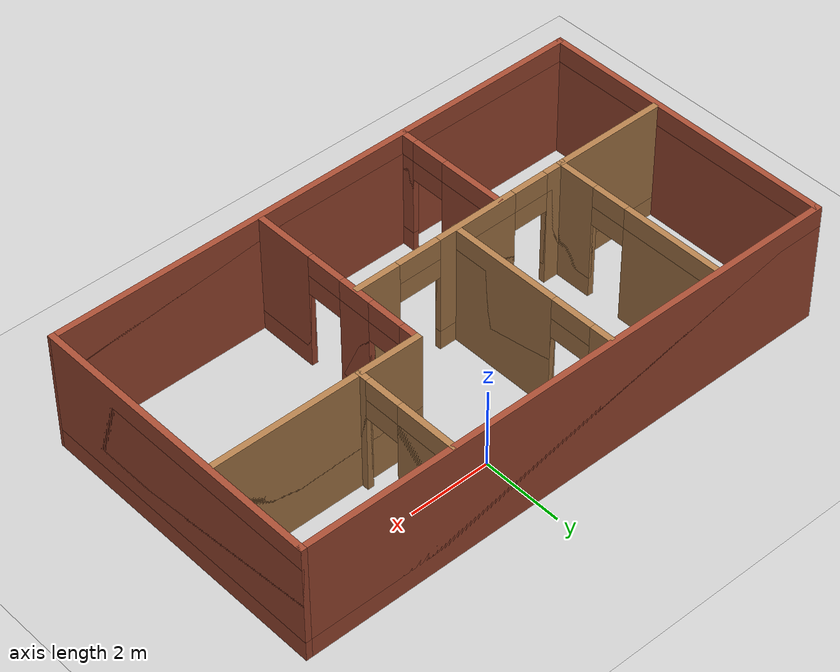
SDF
<sdf version="1.7">
 <world name="default">
  <model name="ground_plane">
   <static>1</static>
   <link name="link">
    <collision name="collision">
     <geometry><plane><normal>0 0 1</normal><size>100 100</size></plane></geometry>
     <surface><friction><ode><mu>100</mu><mu2>50</mu2></ode></friction></surface>
    </collision>
    <visual name="visual">
     <cast_shadows>0</cast_shadows>
     <geometry><plane><normal>0 0 1</normal><size>100 100</size></plane></geometry>
     <material>
      <script><uri>file://media/materials/scripts/gazebo.material</uri><name>Gazebo/Grey</name></script>
     </material>
    </visual>
   </link>
  </model>
  <model name="Home">
   <pose>-1 -2.37 0 0 -0 0</pose>
   <link name="Wall_12">
    <pose>1.66056 -1.22804 0 0 -0 1.5708</pose>
    <visual name="Wall_12_Visual_0">
     <pose>-1.61056 0 1.25 0 -0 0</pose>
     <geometry><box><size>1.52888 0.15 2.5</size></box></geometry>
     <material>
      <script><uri>file://media/materials/scripts/gazebo.material</uri><name>Gazebo/Bricks</name></script>
      <ambient>1 1 1 1</ambient>
     </material>
     <meta><layer>0</layer></meta>
    </visual>
    <collision name="Wall_12_Collision_0">
     <geometry><box><size>1.52888 0.15 2.5</size></box></geometry>
     <pose>-1.61056 0 1.25 0 -0 0</pose>
    </collision>
    <visual name="Wall_12_Visual_1">
     <pose>0.530674 0 1.25 0 -0 0</pose>
     <geometry><box><size>0.861072 0.15 2.5</size></box></geometry>
     <material>
      <script><uri>file://media/materials/scripts/gazebo.material</uri><name>Gazebo/Bricks</name></script>
      <ambient>1 1 1 1</ambient>
     </material>
     <meta><layer>0</layer></meta>
    </visual>
    <collision name="Wall_12_Collision_1">
     <geometry><box><size>0.861072 0.15 2.5</size></box></geometry>
     <pose>0.530674 0 1.25 0 -0 0</pose>
    </collision>
    <visual name="Wall_12_Visual_2">
     <pose>2.1181 0 1.25 0 -0 0</pose>
     <geometry><box><size>0.51379 0.15 2.5</size></box></geometry>
     <material>
      <script><uri>file://media/materials/scripts/gazebo.material</uri><name>Gazebo/Bricks</name></script>
      <ambient>1 1 1 1</ambient>
     </material>
     <meta><layer>0</layer></meta>
    </visual>
    <collision name="Wall_12_Collision_2">
     <geometry><box><size>0.51379 0.15 2.5</size></box></geometry>
     <pose>2.1181 0 1.25 0 -0 0</pose>
    </collision>
    <visual name="Wall_12_Visual_3">
     <pose>-0.372993 0 2.25 0 -0 0</pose>
     <geometry><box><size>0.946261 0.15 0.5</size></box></geometry>
     <material>
      <script><uri>file://media/materials/scripts/gazebo.material</uri><name>Gazebo/Bricks</name></script>
      <ambient>1 1 1 1</ambient>
     </material>
     <meta><layer>0</layer></meta>
    </visual>
    <collision name="Wall_12_Collision_3">
     <geometry><box><size>0.946261 0.15 0.5</size></box></geometry>
     <pose>-0.372993 0 2.25 0 -0 0</pose>
    </collision>
    <visual name="Wall_12_Visual_4">
     <pose>1.41121 0 2.25 0 -0 0</pose>
     <geometry><box><size>0.9 0.15 0.5</size></box></geometry>
     <material>
      <script><uri>file://media/materials/scripts/gazebo.material</uri><name>Gazebo/Bricks</name></script>
      <ambient>1 1 1 1</ambient>
     </material>
     <meta><layer>0</layer></meta>
    </visual>
    <collision name="Wall_12_Collision_4">
     <geometry><box><size>0.9 0.15 0.5</size></box></geometry>
     <pose>1.41121 0 2.25 0 -0 0</pose>
    </collision>
   </link>
   <link name="Wall_13">
    <collision name="Wall_13_Collision">
     <geometry><box><size>5.25 0.15 2.5</size></box></geometry>
     <pose>0 0 1.25 0 -0 0</pose>
    </collision>
    <visual name="Wall_13_Visual">
     <pose>0 0 1.25 0 -0 0</pose>
     <geometry><box><size>5.25 0.15 2.5</size></box></geometry>
     <material>
      <script><uri>file://media/materials/scripts/gazebo.material</uri><name>Gazebo/Wood</name></script>
      <ambient>1 1 1 1</ambient>
     </material>
     <meta><layer>0</layer></meta>
    </visual>
    <pose>4.21056 1.07196 0 0 -0 0</pose>
   </link>
   <link name="Wall_15">
    <pose>3.11696 2.38389 0 0 -0 1.5708</pose>
    <visual name="Wall_15_Visual_0">
     <pose>-1.22409 0 1.25 0 -0 0</pose>
     <geometry><box><size>0.301812 0.15 2.5</size></box></geometry>
     <material>
      <script><uri>file://media/materials/scripts/gazebo.material</uri><name>Gazebo/Wood</name></script>
      <ambient>1 1 1 1</ambient>
     </material>
     <meta><layer>0</layer></meta>
    </visual>
    <collision name="Wall_15_Collision_0">
     <geometry><box><size>0.301812 0.15 2.5</size></box></geometry>
     <pose>-1.22409 0 1.25 0 -0 0</pose>
    </collision>
    <visual name="Wall_15_Visual_1">
     <pose>0.600906 0 1.25 0 -0 0</pose>
     <geometry><box><size>1.54819 0.15 2.5</size></box></geometry>
     <material>
      <script><uri>file://media/materials/scripts/gazebo.material</uri><name>Gazebo/Wood</name></script>
      <ambient>1 1 1 1</ambient>
     </material>
     <meta><layer>0</layer></meta>
    </visual>
    <collision name="Wall_15_Collision_1">
     <geometry><box><size>1.54819 0.15 2.5</size></box></geometry>
     <pose>0.600906 0 1.25 0 -0 0</pose>
    </collision>
    <visual name="Wall_15_Visual_2">
     <pose>-0.623188 0 2.25 0 -0 0</pose>
     <geometry><box><size>0.9 0.15 0.5</size></box></geometry>
     <material>
      <script><uri>file://media/materials/scripts/gazebo.material</uri><name>Gazebo/Wood</name></script>
      <ambient>1 1 1 1</ambient>
     </material>
     <meta><layer>0</layer></meta>
    </visual>
    <collision name="Wall_15_Collision_2">
     <geometry><box><size>0.9 0.15 0.5</size></box></geometry>
     <pose>-0.623188 0 2.25 0 -0 0</pose>
    </collision>
   </link>
   <link name="Wall_18">
    <pose>-3.96332 1.41133 0 0 -0 -1.5708</pose>
    <visual name="Wall_18_Visual_0">
     <pose>-0.988781 0 1.25 0 -0 0</pose>
     <geometry><box><size>2.52244 0.15 2.5</size></box></geometry>
     <material>
      <script><uri>file://media/materials/scripts/gazebo.material</uri><name>Gazebo/Wood</name></script>
      <ambient>1 1 1 1</ambient>
     </material>
     <meta><layer>0</layer></meta>
    </visual>
    <collision name="Wall_18_Collision_0">
     <geometry><box><size>2.52244 0.15 2.5</size></box></geometry>
     <pose>-0.988781 0 1.25 0 -0 0</pose>
    </collision>
    <visual name="Wall_18_Visual_1">
     <pose>1.71122 0 1.25 0 -0 0</pose>
     <geometry><box><size>1.07756 0.15 2.5</size></box></geometry>
     <material>
      <script><uri>file://media/materials/scripts/gazebo.material</uri><name>Gazebo/Wood</name></script>
      <ambient>1 1 1 1</ambient>
     </material>
     <meta><layer>0</layer></meta>
    </visual>
    <collision name="Wall_18_Collision_1">
     <geometry><box><size>1.07756 0.15 2.5</size></box></geometry>
     <pose>1.71122 0 1.25 0 -0 0</pose>
    </collision>
    <visual name="Wall_18_Visual_2">
     <pose>0.722438 0 2.25 0 -0 0</pose>
     <geometry><box><size>0.9 0.15 0.5</size></box></geometry>
     <material>
      <script><uri>file://media/materials/scripts/gazebo.material</uri><name>Gazebo/Wood</name></script>
      <ambient>1 1 1 1</ambient>
     </material>
     <meta><layer>0</layer></meta>
    </visual>
    <collision name="Wall_18_Collision_2">
     <geometry><box><size>0.9 0.15 0.5</size></box></geometry>
     <pose>0.722438 0 2.25 0 -0 0</pose>
    </collision>
   </link>
   <link name="Wall_19">
    <pose>-1.18914 -0.740536 0 0 -0 0.008269</pose>
    <visual name="Wall_19_Visual_0">
     <pose>-2.59209 0 1.25 0 -0 0</pose>
     <geometry><box><size>0.560625 0.15 2.5</size></box></geometry>
     <material>
      <script><uri>file://media/materials/scripts/gazebo.material</uri><name>Gazebo/Wood</name></script>
      <ambient>1 1 1 1</ambient>
     </material>
     <meta><layer>0</layer></meta>
    </visual>
    <collision name="Wall_19_Collision_0">
     <geometry><box><size>0.560625 0.15 2.5</size></box></geometry>
     <pose>-2.59209 0 1.25 0 -0 0</pose>
    </collision>
    <visual name="Wall_19_Visual_1">
     <pose>-0.371666 0 1.25 0 -0 0</pose>
     <geometry><box><size>2.08022 0.15 2.5</size></box></geometry>
     <material>
      <script><uri>file://media/materials/scripts/gazebo.material</uri><name>Gazebo/Wood</name></script>
      <ambient>1 1 1 1</ambient>
     </material>
     <meta><layer>0</layer></meta>
    </visual>
    <collision name="Wall_19_Collision_1">
     <geometry><box><size>2.08022 0.15 2.5</size></box></geometry>
     <pose>-0.371666 0 1.25 0 -0 0</pose>
    </collision>
    <visual name="Wall_19_Visual_2">
     <pose>2.31313 0 1.25 0 -0 0</pose>
     <geometry><box><size>1.11854 0.15 2.5</size></box></geometry>
     <material>
      <script><uri>file://media/materials/scripts/gazebo.material</uri><name>Gazebo/Wood</name></script>
      <ambient>1 1 1 1</ambient>
     </material>
     <meta><layer>0</layer></meta>
    </visual>
    <collision name="Wall_19_Collision_2">
     <geometry><box><size>1.11854 0.15 2.5</size></box></geometry>
     <pose>2.31313 0 1.25 0 -0 0</pose>
    </collision>
    <visual name="Wall_19_Visual_3">
     <pose>-1.86178 0 2.25 0 -0 0</pose>
     <geometry><box><size>0.9 0.15 0.5</size></box></geometry>
     <material>
      <script><uri>file://media/materials/scripts/gazebo.material</uri><name>Gazebo/Wood</name></script>
      <ambient>1 1 1 1</ambient>
     </material>
     <meta><layer>0</layer></meta>
    </visual>
    <collision name="Wall_19_Collision_3">
     <geometry><box><size>0.9 0.15 0.5</size></box></geometry>
     <pose>-1.86178 0 2.25 0 -0 0</pose>
    </collision>
    <visual name="Wall_19_Visual_4">
     <pose>1.21116 0 2.25 0 -0 0</pose>
     <geometry><box><size>1.08542 0.15 0.5</size></box></geometry>
     <material>
      <script><uri>file://media/materials/scripts/gazebo.material</uri><name>Gazebo/Wood</name></script>
      <ambient>1 1 1 1</ambient>
     </material>
     <meta><layer>0</layer></meta>
    </visual>
    <collision name="Wall_19_Collision_4">
     <geometry><box><size>1.08542 0.15 0.5</size></box></geometry>
     <pose>1.21116 0 2.25 0 -0 0</pose>
    </collision>
   </link>
   <link name="Wall_30">
    <collision name="Wall_30_Collision">
     <geometry><box><size>2.84783 0.15 2.5</size></box></geometry>
     <pose>0 0 1.25 0 -0 0</pose>
    </collision>
    <visual name="Wall_30_Visual">
     <pose>0 0 1.25 0 -0 0</pose>
     <geometry><box><size>2.84783 0.15 2.5</size></box></geometry>
     <material>
      <script><uri>file://media/materials/scripts/gazebo.material</uri><name>Gazebo/Wood</name></script>
      <ambient>1 1 1 1</ambient>
     </material>
     <meta><layer>0</layer></meta>
    </visual>
    <pose>-5.33536 -0.766722 0 0 -0 0.002265</pose>
   </link>
   <link name="Wall_35">
    <pose>-2.22395 -2.216 0 0 -0 -1.5708</pose>
    <visual name="Wall_35_Visual_0">
     <pose>-0.661897 0 1.25 0 -0 0</pose>
     <geometry><box><size>1.67621 0.15 2.5</size></box></geometry>
     <material>
      <script><uri>file://media/materials/scripts/gazebo.material</uri><name>Gazebo/Bricks</name></script>
      <ambient>1 1 1 1</ambient>
     </material>
     <meta><layer>0</layer></meta>
    </visual>
    <collision name="Wall_35_Collision_0">
     <geometry><box><size>1.67621 0.15 2.5</size></box></geometry>
     <pose>-0.661897 0 1.25 0 -0 0</pose>
    </collision>
    <visual name="Wall_35_Visual_1">
     <pose>1.2881 0 1.25 0 -0 0</pose>
     <geometry><box><size>0.423793 0.15 2.5</size></box></geometry>
     <material>
      <script><uri>file://media/materials/scripts/gazebo.material</uri><name>Gazebo/Bricks</name></script>
      <ambient>1 1 1 1</ambient>
     </material>
     <meta><layer>0</layer></meta>
    </visual>
    <collision name="Wall_35_Collision_1">
     <geometry><box><size>0.423793 0.15 2.5</size></box></geometry>
     <pose>1.2881 0 1.25 0 -0 0</pose>
    </collision>
    <visual name="Wall_35_Visual_2">
     <pose>0.626207 0 2.25 0 -0 0</pose>
     <geometry><box><size>0.9 0.15 0.5</size></box></geometry>
     <material>
      <script><uri>file://media/materials/scripts/gazebo.material</uri><name>Gazebo/Bricks</name></script>
      <ambient>1 1 1 1</ambient>
     </material>
     <meta><layer>0</layer></meta>
    </visual>
    <collision name="Wall_35_Collision_2">
     <geometry><box><size>0.9 0.15 0.5</size></box></geometry>
     <pose>0.626207 0 2.25 0 -0 0</pose>
    </collision>
   </link>
   <link name="Wall_37">
    <pose>-1.02777 1.42469 0 0 -0 1.5708</pose>
    <visual name="Wall_37_Visual_0">
     <pose>-0.80612 0 1.25 0 -0 0</pose>
     <geometry><box><size>2.88776 0.15 2.5</size></box></geometry>
     <material>
      <script><uri>file://media/materials/scripts/gazebo.material</uri><name>Gazebo/Wood</name></script>
      <ambient>1 1 1 1</ambient>
     </material>
     <meta><layer>0</layer></meta>
    </visual>
    <collision name="Wall_37_Collision_0">
     <geometry><box><size>2.88776 0.15 2.5</size></box></geometry>
     <pose>-0.80612 0 1.25 0 -0 0</pose>
    </collision>
    <visual name="Wall_37_Visual_1">
     <pose>1.97484 0 1.25 0 -0 0</pose>
     <geometry><box><size>0.550325 0.15 2.5</size></box></geometry>
     <material>
      <script><uri>file://media/materials/scripts/gazebo.material</uri><name>Gazebo/Wood</name></script>
      <ambient>1 1 1 1</ambient>
     </material>
     <meta><layer>0</layer></meta>
    </visual>
    <collision name="Wall_37_Collision_1">
     <geometry><box><size>0.550325 0.15 2.5</size></box></geometry>
     <pose>1.97484 0 1.25 0 -0 0</pose>
    </collision>
    <visual name="Wall_37_Visual_2">
     <pose>1.16872 0 2.25 0 -0 0</pose>
     <geometry><box><size>1.06191 0.15 0.5</size></box></geometry>
     <material>
      <script><uri>file://media/materials/scripts/gazebo.material</uri><name>Gazebo/Wood</name></script>
      <ambient>1 1 1 1</ambient>
     </material>
     <meta><layer>0</layer></meta>
    </visual>
    <collision name="Wall_37_Collision_2">
     <geometry><box><size>1.06191 0.15 0.5</size></box></geometry>
     <pose>1.16872 0 2.25 0 -0 0</pose>
    </collision>
   </link>
   <link name="Wall_4">
    <collision name="Wall_4_Collision">
     <geometry><box><size>7.54823 0.15 2.5</size></box></geometry>
     <pose>0 0 1.25 0 -0 0</pose>
    </collision>
    <visual name="Wall_4_Visual">
     <pose>0 0 1.25 0 -0 0</pose>
     <geometry><box><size>7.54823 0.15 2.5</size></box></geometry>
     <material>
      <script><uri>file://media/materials/scripts/gazebo.material</uri><name>Gazebo/Bricks</name></script>
      <ambient>1 1 1 1</ambient>
     </material>
     <meta><layer>0</layer></meta>
    </visual>
    <pose>-6.80015 -0.007429 0 0 -0 1.5701</pose>
   </link>
   <link name="Wall_5">
    <collision name="Wall_5_Collision">
     <geometry><box><size>13.75 0.15 2.5</size></box></geometry>
     <pose>0 0 1.25 0 -0 0</pose>
    </collision>
    <visual name="Wall_5_Visual">
     <pose>0 0 1.25 0 -0 0</pose>
     <geometry><box><size>13.75 0.15 2.5</size></box></geometry>
     <material>
      <script><uri>file://media/materials/scripts/gazebo.material</uri><name>Gazebo/Bricks</name></script>
      <ambient>1 1 1 1</ambient>
     </material>
     <meta><layer>0</layer></meta>
    </visual>
    <pose>0.002433 3.70689 0 0 -0 0</pose>
   </link>
   <link name="Wall_6">
    <collision name="Wall_6_Collision">
     <geometry><box><size>7.5 0.15 2.5</size></box></geometry>
     <pose>0 0 1.25 0 -0 0</pose>
    </collision>
    <visual name="Wall_6_Visual">
     <pose>0 0 1.25 0 -0 0</pose>
     <geometry><box><size>7.5 0.15 2.5</size></box></geometry>
     <material>
      <script><uri>file://media/materials/scripts/gazebo.material</uri><name>Gazebo/Bricks</name></script>
      <ambient>1 1 1 1</ambient>
     </material>
     <meta><layer>0</layer></meta>
    </visual>
    <pose>6.80243 0.031891 0 0 -0 -1.5708</pose>
   </link>
   <link name="Wall_7">
    <collision name="Wall_7_Collision">
     <geometry><box><size>13.7088 0.15 2.5</size></box></geometry>
     <pose>0 0 1.25 0 -0 0</pose>
    </collision>
    <visual name="Wall_7_Visual">
     <pose>0 0 1.25 0 -0 0</pose>
     <geometry><box><size>13.7088 0.15 2.5</size></box></geometry>
     <material>
      <script><uri>file://media/materials/scripts/gazebo.material</uri><name>Gazebo/Bricks</name></script>
      <ambient>1 1 1 1</ambient>
     </material>
     <meta><layer>0</layer></meta>
    </visual>
    <pose>0.023113 -3.67482 0 0 -0 -3.13691</pose>
   </link>
   <static>1</static>
  </model>
  <model name="bookshelf">
   <static>1</static>
   <link name="link">
    <inertial><mass>1</mass></inertial>
    <collision name="back">
     <pose>0 0.005 0.6 0 -0 0</pose>
     <geometry><box><size>0.9 0.01 1.2</size></box></geometry>
    </collision>
    <visual name="visual1">
     <pose>0 0.005 0.6 0 -0 0</pose>
     <geometry><box><size>0.9 0.01 1.2</size></box></geometry>
     <material>
      <script><uri>file://media/materials/scripts/gazebo.material</uri><name>Gazebo/Wood</name></script>
     </material>
    </visual>
    <collision name="left_side">
     <pose>0.45 -0.195 0.6 0 -0 0</pose>
     <geometry><box><size>0.02 0.4 1.2</size></box></geometry>
    </collision>
    <visual name="visual2">
     <pose>0.45 -0.195 0.6 0 -0 0</pose>
     <geometry><box><size>0.02 0.4 1.2</size></box></geometry>
     <material>
      <script><uri>file://media/materials/scripts/gazebo.material</uri><name>Gazebo/Wood</name></script>
     </material>
    </visual>
    <collision name="right_side">
     <pose>-0.45 -0.195 0.6 0 -0 0</pose>
     <geometry><box><size>0.02 0.4 1.2</size></box></geometry>
    </collision>
    <visual name="visual3">
     <pose>-0.45 -0.195 0.6 0 -0 0</pose>
     <geometry><box><size>0.02 0.4 1.2</size></box></geometry>
     <material>
      <script><uri>file://media/materials/scripts/gazebo.material</uri><name>Gazebo/Wood</name></script>
     </material>
    </visual>
    <collision name="bottom">
     <pose>0 -0.195 0.03 0 -0 0</pose>
     <geometry><box><size>0.88 0.4 0.06</size></box></geometry>
    </collision>
    <visual name="visual4">
     <pose>0 -0.195 0.03 0 -0 0</pose>
     <geometry><box><size>0.88 0.4 0.06</size></box></geometry>
     <material>
      <script><uri>file://media/materials/scripts/gazebo.material</uri><name>Gazebo/Wood</name></script>
     </material>
    </visual>
    <collision name="top">
     <pose>0 -0.195 1.19 0 -0 0</pose>
     <geometry><box><size>0.88 0.4 0.02</size></box></geometry>
    </collision>
    <visual name="visual5">
     <pose>0 -0.195 1.19 0 -0 0</pose>
     <geometry><box><size>0.88 0.4 0.02</size></box></geometry>
     <material>
      <script><uri>file://media/materials/scripts/gazebo.material</uri><name>Gazebo/Wood</name></script>
     </material>
    </visual>
    <collision name="low_shelf">
     <pose>0 -0.195 0.43 0 -0 0</pose>
     <geometry><box><size>0.88 0.4 0.02</size></box></geometry>
    </collision>
    <visual name="visual6">
     <pose>0 -0.195 0.43 0 -0 0</pose>
     <geometry><box><size>0.88 0.4 0.02</size></box></geometry>
     <material>
      <script><uri>file://media/materials/scripts/gazebo.material</uri><name>Gazebo/Wood</name></script>
     </material>
    </visual>
    <collision name="high_shelf">
     <pose>0 -0.195 0.8 0 -0 0</pose>
     <geometry><box><size>0.88 0.4 0.02</size></box></geometry>
    </collision>
    <visual name="visual7">
     <pose>0 -0.195 0.8 0 -0 0</pose>
     <geometry><box><size>0.88 0.4 0.02</size></box></geometry>
     <material>
      <script><uri>file://media/materials/scripts/gazebo.material</uri><name>Gazebo/Wood</name></script>
     </material>
    </visual>
   </link>
   <pose>5.21081 1.16254 0 0 -0 0</pose>
  </model>
  <model name="Home_0">
   <pose>-1 -2.37 0.5 0 -0 0</pose>
   <link name="Wall_12">
    <pose>1.66056 -1.22804 0 0 -0 1.5708</pose>
    <visual name="Wall_12_Visual_0">
     <pose>-1.61056 0 1.25 0 -0 0</pose>
     <geometry><box><size>1.52888 0.15 2.5</size></box></geometry>
     <material>
      <script><uri>file://media/materials/scripts/gazebo.material</uri><name>Gazebo/Bricks</name></script>
      <ambient>1 1 1 1</ambient>
     </material>
     <meta><layer>0</layer></meta>
    </visual>
    <collision name="Wall_12_Collision_0">
     <geometry><box><size>1.52888 0.15 2.5</size></box></geometry>
     <pose>-1.61056 0 1.25 0 -0 0</pose>
    </collision>
    <visual name="Wall_12_Visual_1">
     <pose>0.530674 0 1.25 0 -0 0</pose>
     <geometry><box><size>0.861072 0.15 2.5</size></box></geometry>
     <material>
      <script><uri>file://media/materials/scripts/gazebo.material</uri><name>Gazebo/Bricks</name></script>
      <ambient>1 1 1 1</ambient>
     </material>
     <meta><layer>0</layer></meta>
    </visual>
    <collision name="Wall_12_Collision_1">
     <geometry><box><size>0.861072 0.15 2.5</size></box></geometry>
     <pose>0.530674 0 1.25 0 -0 0</pose>
    </collision>
    <visual name="Wall_12_Visual_2">
     <pose>2.1181 0 1.25 0 -0 0</pose>
     <geometry><box><size>0.51379 0.15 2.5</size></box></geometry>
     <material>
      <script><uri>file://media/materials/scripts/gazebo.material</uri><name>Gazebo/Bricks</name></script>
      <ambient>1 1 1 1</ambient>
     </material>
     <meta><layer>0</layer></meta>
    </visual>
    <collision name="Wall_12_Collision_2">
     <geometry><box><size>0.51379 0.15 2.5</size></box></geometry>
     <pose>2.1181 0 1.25 0 -0 0</pose>
    </collision>
    <visual name="Wall_12_Visual_3">
     <pose>-0.372993 0 2.25 0 -0 0</pose>
     <geometry><box><size>0.946261 0.15 0.5</size></box></geometry>
     <material>
      <script><uri>file://media/materials/scripts/gazebo.material</uri><name>Gazebo/Bricks</name></script>
      <ambient>1 1 1 1</ambient>
     </material>
     <meta><layer>0</layer></meta>
    </visual>
    <collision name="Wall_12_Collision_3">
     <geometry><box><size>0.946261 0.15 0.5</size></box></geometry>
     <pose>-0.372993 0 2.25 0 -0 0</pose>
    </collision>
    <visual name="Wall_12_Visual_4">
     <pose>1.41121 0 2.25 0 -0 0</pose>
     <geometry><box><size>0.9 0.15 0.5</size></box></geometry>
     <material>
      <script><uri>file://media/materials/scripts/gazebo.material</uri><name>Gazebo/Bricks</name></script>
      <ambient>1 1 1 1</ambient>
     </material>
     <meta><layer>0</layer></meta>
    </visual>
    <collision name="Wall_12_Collision_4">
     <geometry><box><size>0.9 0.15 0.5</size></box></geometry>
     <pose>1.41121 0 2.25 0 -0 0</pose>
    </collision>
   </link>
   <link name="Wall_13">
    <collision name="Wall_13_Collision">
     <geometry><box><size>5.25 0.15 2.5</size></box></geometry>
     <pose>0 0 1.25 0 -0 0</pose>
    </collision>
    <visual name="Wall_13_Visual">
     <pose>0 0 1.25 0 -0 0</pose>
     <geometry><box><size>5.25 0.15 2.5</size></box></geometry>
     <material>
      <script><uri>file://media/materials/scripts/gazebo.material</uri><name>Gazebo/Wood</name></script>
      <ambient>1 1 1 1</ambient>
     </material>
     <meta><layer>0</layer></meta>
    </visual>
    <pose>4.21056 1.07196 0 0 -0 0</pose>
   </link>
   <link name="Wall_15">
    <pose>3.11696 2.38389 0 0 -0 1.5708</pose>
    <visual name="Wall_15_Visual_0">
     <pose>-1.22409 0 1.25 0 -0 0</pose>
     <geometry><box><size>0.301812 0.15 2.5</size></box></geometry>
     <material>
      <script><uri>file://media/materials/scripts/gazebo.material</uri><name>Gazebo/Wood</name></script>
      <ambient>1 1 1 1</ambient>
     </material>
     <meta><layer>0</layer></meta>
    </visual>
    <collision name="Wall_15_Collision_0">
     <geometry><box><size>0.301812 0.15 2.5</size></box></geometry>
     <pose>-1.22409 0 1.25 0 -0 0</pose>
    </collision>
    <visual name="Wall_15_Visual_1">
     <pose>0.600906 0 1.25 0 -0 0</pose>
     <geometry><box><size>1.54819 0.15 2.5</size></box></geometry>
     <material>
      <script><uri>file://media/materials/scripts/gazebo.material</uri><name>Gazebo/Wood</name></script>
      <ambient>1 1 1 1</ambient>
     </material>
     <meta><layer>0</layer></meta>
    </visual>
    <collision name="Wall_15_Collision_1">
     <geometry><box><size>1.54819 0.15 2.5</size></box></geometry>
     <pose>0.600906 0 1.25 0 -0 0</pose>
    </collision>
    <visual name="Wall_15_Visual_2">
     <pose>-0.623188 0 2.25 0 -0 0</pose>
     <geometry><box><size>0.9 0.15 0.5</size></box></geometry>
     <material>
      <script><uri>file://media/materials/scripts/gazebo.material</uri><name>Gazebo/Wood</name></script>
      <ambient>1 1 1 1</ambient>
     </material>
     <meta><layer>0</layer></meta>
    </visual>
    <collision name="Wall_15_Collision_2">
     <geometry><box><size>0.9 0.15 0.5</size></box></geometry>
     <pose>-0.623188 0 2.25 0 -0 0</pose>
    </collision>
   </link>
   <link name="Wall_18">
    <pose>-3.96332 1.41133 0 0 -0 -1.5708</pose>
    <visual name="Wall_18_Visual_0">
     <pose>-0.988781 0 1.25 0 -0 0</pose>
     <geometry><box><size>2.52244 0.15 2.5</size></box></geometry>
     <material>
      <script><uri>file://media/materials/scripts/gazebo.material</uri><name>Gazebo/Wood</name></script>
      <ambient>1 1 1 1</ambient>
     </material>
     <meta><layer>0</layer></meta>
    </visual>
    <collision name="Wall_18_Collision_0">
     <geometry><box><size>2.52244 0.15 2.5</size></box></geometry>
     <pose>-0.988781 0 1.25 0 -0 0</pose>
    </collision>
    <visual name="Wall_18_Visual_1">
     <pose>1.71122 0 1.25 0 -0 0</pose>
     <geometry><box><size>1.07756 0.15 2.5</size></box></geometry>
     <material>
      <script><uri>file://media/materials/scripts/gazebo.material</uri><name>Gazebo/Wood</name></script>
      <ambient>1 1 1 1</ambient>
     </material>
     <meta><layer>0</layer></meta>
    </visual>
    <collision name="Wall_18_Collision_1">
     <geometry><box><size>1.07756 0.15 2.5</size></box></geometry>
     <pose>1.71122 0 1.25 0 -0 0</pose>
    </collision>
    <visual name="Wall_18_Visual_2">
     <pose>0.722438 0 2.25 0 -0 0</pose>
     <geometry><box><size>0.9 0.15 0.5</size></box></geometry>
     <material>
      <script><uri>file://media/materials/scripts/gazebo.material</uri><name>Gazebo/Wood</name></script>
      <ambient>1 1 1 1</ambient>
     </material>
     <meta><layer>0</layer></meta>
    </visual>
    <collision name="Wall_18_Collision_2">
     <geometry><box><size>0.9 0.15 0.5</size></box></geometry>
     <pose>0.722438 0 2.25 0 -0 0</pose>
    </collision>
   </link>
   <link name="Wall_19">
    <pose>-1.18914 -0.740536 0 0 -0 0.008269</pose>
    <visual name="Wall_19_Visual_0">
     <pose>-2.59209 0 1.25 0 -0 0</pose>
     <geometry><box><size>0.560625 0.15 2.5</size></box></geometry>
     <material>
      <script><uri>file://media/materials/scripts/gazebo.material</uri><name>Gazebo/Wood</name></script>
      <ambient>1 1 1 1</ambient>
     </material>
     <meta><layer>0</layer></meta>
    </visual>
    <collision name="Wall_19_Collision_0">
     <geometry><box><size>0.560625 0.15 2.5</size></box></geometry>
     <pose>-2.59209 0 1.25 0 -0 0</pose>
    </collision>
    <visual name="Wall_19_Visual_1">
     <pose>-0.371666 0 1.25 0 -0 0</pose>
     <geometry><box><size>2.08022 0.15 2.5</size></box></geometry>
     <material>
      <script><uri>file://media/materials/scripts/gazebo.material</uri><name>Gazebo/Wood</name></script>
      <ambient>1 1 1 1</ambient>
     </material>
     <meta><layer>0</layer></meta>
    </visual>
    <collision name="Wall_19_Collision_1">
     <geometry><box><size>2.08022 0.15 2.5</size></box></geometry>
     <pose>-0.371666 0 1.25 0 -0 0</pose>
    </collision>
    <visual name="Wall_19_Visual_2">
     <pose>2.31313 0 1.25 0 -0 0</pose>
     <geometry><box><size>1.11854 0.15 2.5</size></box></geometry>
     <material>
      <script><uri>file://media/materials/scripts/gazebo.material</uri><name>Gazebo/Wood</name></script>
      <ambient>1 1 1 1</ambient>
     </material>
     <meta><layer>0</layer></meta>
    </visual>
    <collision name="Wall_19_Collision_2">
     <geometry><box><size>1.11854 0.15 2.5</size></box></geometry>
     <pose>2.31313 0 1.25 0 -0 0</pose>
    </collision>
    <visual name="Wall_19_Visual_3">
     <pose>-1.86178 0 2.25 0 -0 0</pose>
     <geometry><box><size>0.9 0.15 0.5</size></box></geometry>
     <material>
      <script><uri>file://media/materials/scripts/gazebo.material</uri><name>Gazebo/Wood</name></script>
      <ambient>1 1 1 1</ambient>
     </material>
     <meta><layer>0</layer></meta>
    </visual>
    <collision name="Wall_19_Collision_3">
     <geometry><box><size>0.9 0.15 0.5</size></box></geometry>
     <pose>-1.86178 0 2.25 0 -0 0</pose>
    </collision>
    <visual name="Wall_19_Visual_4">
     <pose>1.21116 0 2.25 0 -0 0</pose>
     <geometry><box><size>1.08542 0.15 0.5</size></box></geometry>
     <material>
      <script><uri>file://media/materials/scripts/gazebo.material</uri><name>Gazebo/Wood</name></script>
      <ambient>1 1 1 1</ambient>
     </material>
     <meta><layer>0</layer></meta>
    </visual>
    <collision name="Wall_19_Collision_4">
     <geometry><box><size>1.08542 0.15 0.5</size></box></geometry>
     <pose>1.21116 0 2.25 0 -0 0</pose>
    </collision>
   </link>
   <link name="Wall_30">
    <collision name="Wall_30_Collision">
     <geometry><box><size>2.84783 0.15 2.5</size></box></geometry>
     <pose>0 0 1.25 0 -0 0</pose>
    </collision>
    <visual name="Wall_30_Visual">
     <pose>0 0 1.25 0 -0 0</pose>
     <geometry><box><size>2.84783 0.15 2.5</size></box></geometry>
     <material>
      <script><uri>file://media/materials/scripts/gazebo.material</uri><name>Gazebo/Wood</name></script>
      <ambient>1 1 1 1</ambient>
     </material>
     <meta><layer>0</layer></meta>
    </visual>
    <pose>-5.33536 -0.766722 0 0 -0 0.002265</pose>
   </link>
   <link name="Wall_35">
    <pose>-2.22395 -2.216 0 0 -0 -1.5708</pose>
    <visual name="Wall_35_Visual_0">
     <pose>-0.661897 0 1.25 0 -0 0</pose>
     <geometry><box><size>1.67621 0.15 2.5</size></box></geometry>
     <material>
      <script><uri>file://media/materials/scripts/gazebo.material</uri><name>Gazebo/Bricks</name></script>
      <ambient>1 1 1 1</ambient>
     </material>
     <meta><layer>0</layer></meta>
    </visual>
    <collision name="Wall_35_Collision_0">
     <geometry><box><size>1.67621 0.15 2.5</size></box></geometry>
     <pose>-0.661897 0 1.25 0 -0 0</pose>
    </collision>
    <visual name="Wall_35_Visual_1">
     <pose>1.2881 0 1.25 0 -0 0</pose>
     <geometry><box><size>0.423793 0.15 2.5</size></box></geometry>
     <material>
      <script><uri>file://media/materials/scripts/gazebo.material</uri><name>Gazebo/Bricks</name></script>
      <ambient>1 1 1 1</ambient>
     </material>
     <meta><layer>0</layer></meta>
    </visual>
    <collision name="Wall_35_Collision_1">
     <geometry><box><size>0.423793 0.15 2.5</size></box></geometry>
     <pose>1.2881 0 1.25 0 -0 0</pose>
    </collision>
    <visual name="Wall_35_Visual_2">
     <pose>0.626207 0 2.25 0 -0 0</pose>
     <geometry><box><size>0.9 0.15 0.5</size></box></geometry>
     <material>
      <script><uri>file://media/materials/scripts/gazebo.material</uri><name>Gazebo/Bricks</name></script>
      <ambient>1 1 1 1</ambient>
     </material>
     <meta><layer>0</layer></meta>
    </visual>
    <collision name="Wall_35_Collision_2">
     <geometry><box><size>0.9 0.15 0.5</size></box></geometry>
     <pose>0.626207 0 2.25 0 -0 0</pose>
    </collision>
   </link>
   <link name="Wall_37">
    <pose>-1.02777 1.42469 0 0 -0 1.5708</pose>
    <visual name="Wall_37_Visual_0">
     <pose>-0.80612 0 1.25 0 -0 0</pose>
     <geometry><box><size>2.88776 0.15 2.5</size></box></geometry>
     <material>
      <script><uri>file://media/materials/scripts/gazebo.material</uri><name>Gazebo/Wood</name></script>
      <ambient>1 1 1 1</ambient>
     </material>
     <meta><layer>0</layer></meta>
    </visual>
    <collision name="Wall_37_Collision_0">
     <geometry><box><size>2.88776 0.15 2.5</size></box></geometry>
     <pose>-0.80612 0 1.25 0 -0 0</pose>
    </collision>
    <visual name="Wall_37_Visual_1">
     <pose>1.97484 0 1.25 0 -0 0</pose>
     <geometry><box><size>0.550325 0.15 2.5</size></box></geometry>
     <material>
      <script><uri>file://media/materials/scripts/gazebo.material</uri><name>Gazebo/Wood</name></script>
      <ambient>1 1 1 1</ambient>
     </material>
     <meta><layer>0</layer></meta>
    </visual>
    <collision name="Wall_37_Collision_1">
     <geometry><box><size>0.550325 0.15 2.5</size></box></geometry>
     <pose>1.97484 0 1.25 0 -0 0</pose>
    </collision>
    <visual name="Wall_37_Visual_2">
     <pose>1.16872 0 2.25 0 -0 0</pose>
     <geometry><box><size>1.06191 0.15 0.5</size></box></geometry>
     <material>
      <script><uri>file://media/materials/scripts/gazebo.material</uri><name>Gazebo/Wood</name></script>
      <ambient>1 1 1 1</ambient>
     </material>
     <meta><layer>0</layer></meta>
    </visual>
    <collision name="Wall_37_Collision_2">
     <geometry><box><size>1.06191 0.15 0.5</size></box></geometry>
     <pose>1.16872 0 2.25 0 -0 0</pose>
    </collision>
   </link>
   <link name="Wall_4">
    <collision name="Wall_4_Collision">
     <geometry><box><size>7.54823 0.15 2.5</size></box></geometry>
     <pose>0 0 1.25 0 -0 0</pose>
    </collision>
    <visual name="Wall_4_Visual">
     <pose>0 0 1.25 0 -0 0</pose>
     <geometry><box><size>7.54823 0.15 2.5</size></box></geometry>
     <material>
      <script><uri>file://media/materials/scripts/gazebo.material</uri><name>Gazebo/Bricks</name></script>
      <ambient>1 1 1 1</ambient>
     </material>
     <meta><layer>0</layer></meta>
    </visual>
    <pose>-6.80015 -0.007429 0 0 -0 1.5701</pose>
   </link>
   <link name="Wall_5">
    <collision name="Wall_5_Collision">
     <geometry><box><size>13.75 0.15 2.5</size></box></geometry>
     <pose>0 0 1.25 0 -0 0</pose>
    </collision>
    <visual name="Wall_5_Visual">
     <pose>0 0 1.25 0 -0 0</pose>
     <geometry><box><size>13.75 0.15 2.5</size></box></geometry>
     <material>
      <script><uri>file://media/materials/scripts/gazebo.material</uri><name>Gazebo/Bricks</name></script>
      <ambient>1 1 1 1</ambient>
     </material>
     <meta><layer>0</layer></meta>
    </visual>
    <pose>0.002433 3.70689 0 0 -0 0</pose>
   </link>
   <link name="Wall_6">
    <collision name="Wall_6_Collision">
     <geometry><box><size>7.5 0.15 2.5</size></box></geometry>
     <pose>0 0 1.25 0 -0 0</pose>
    </collision>
    <visual name="Wall_6_Visual">
     <pose>0 0 1.25 0 -0 0</pose>
     <geometry><box><size>7.5 0.15 2.5</size></box></geometry>
     <material>
      <script><uri>file://media/materials/scripts/gazebo.material</uri><name>Gazebo/Bricks</name></script>
      <ambient>1 1 1 1</ambient>
     </material>
     <meta><layer>0</layer></meta>
    </visual>
    <pose>6.80243 0.031891 0 0 -0 -1.5708</pose>
   </link>
   <link name="Wall_7">
    <collision name="Wall_7_Collision">
     <geometry><box><size>13.7088 0.15 2.5</size></box></geometry>
     <pose>0 0 1.25 0 -0 0</pose>
    </collision>
    <visual name="Wall_7_Visual">
     <pose>0 0 1.25 0 -0 0</pose>
     <geometry><box><size>13.7088 0.15 2.5</size></box></geometry>
     <material>
      <script><uri>file://media/materials/scripts/gazebo.material</uri><name>Gazebo/Bricks</name></script>
      <ambient>1 1 1 1</ambient>
     </material>
     <meta><layer>0</layer></meta>
    </visual>
    <pose>0.023113 -3.67482 0 0 -0 -3.13691</pose>
   </link>
   <static>1</static>
  </model>
  <model name="tenis_ball">
   <link name="link">
    <inertial>
     <mass>1</mass>
     <inertia><ixx>0.1</ixx><ixy>0</ixy><ixz>0</ixz><iyy>0.1</iyy><iyz>0</iyz><izz>0.1</izz></inertia>
    </inertial>
    <visual name="visual">
     <geometry><sphere><radius>0.033</radius></sphere></geometry>
     <material>
      <script><name>Gazebo/Yellow</name><uri>file://media/materials/scripts/gazebo.material</uri></script>
      <shader type="pixel"><normal_map>__default__</normal_map></shader>
      <ambient>1 1 0 1</ambient>
      <diffuse>1 1 0 1</diffuse>
      <emissive>0 0 0 1</emissive>
     </material>
    </visual>
    <collision name="collision">
     <geometry><sphere><radius>0.033</radius></sphere></geometry>
     <surface>
      <friction>
       <ode><mu>1</mu><mu2>1</mu2><fdir1>0 0 0</fdir1><slip1>0</slip1><slip2>0</slip2></ode>
       <torsional>
        <coefficient>1</coefficient>
        <patch_radius>0</patch_radius>
        <surface_radius>0</surface_radius>
        <use_patch_radius>1</use_patch_radius>
        <ode><slip>0</slip></ode>
       </torsional>
      </friction>
      <bounce><restitution_coefficient>0</restitution_coefficient><threshold>1e+06</threshold></bounce>
      <contact>
       <collide_without_contact>0</collide_without_contact>
       <collide_without_contact_bitmask>1</collide_without_contact_bitmask>
       <collide_bitmask>1</collide_bitmask>
       <ode>
        <soft_cfm>0</soft_cfm>
        <soft_erp>0.2</soft_erp>
        <kp>1e+13</kp>
        <kd>1</kd>
        <max_vel>0.01</max_vel>
        <min_depth>0</min_depth>
       </ode>
       <bullet>
        <split_impulse>1</split_impulse>
        <split_impulse_penetration_threshold>-0.01</split_impulse_penetration_threshold>
        <soft_cfm>0</soft_cfm>
        <soft_erp>0.2</soft_erp>
        <kp>1e+13</kp>
        <kd>1</kd>
       </bullet>
      </contact>
     </surface>
    </collision>
   </link>
   <static>0</static>
   <pose>0.867539 -0.199186 0.5 0 -0 0</pose>
  </model>
 </world>
</sdf>
